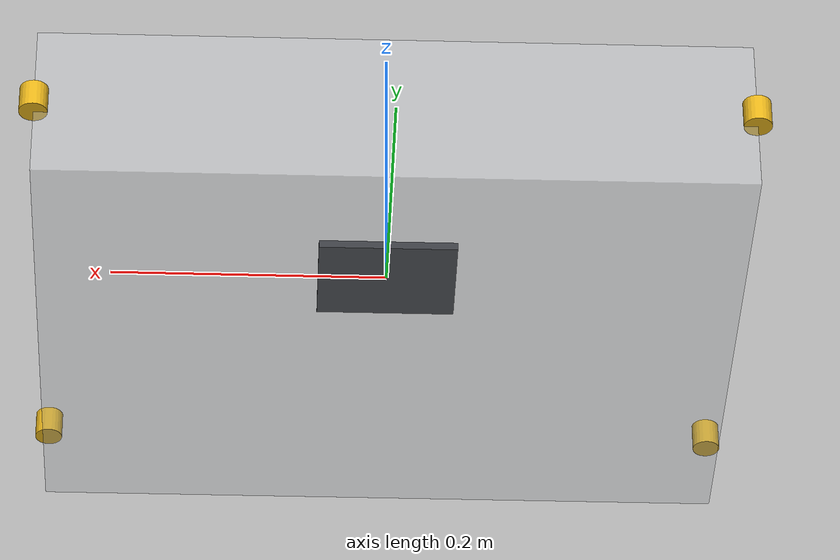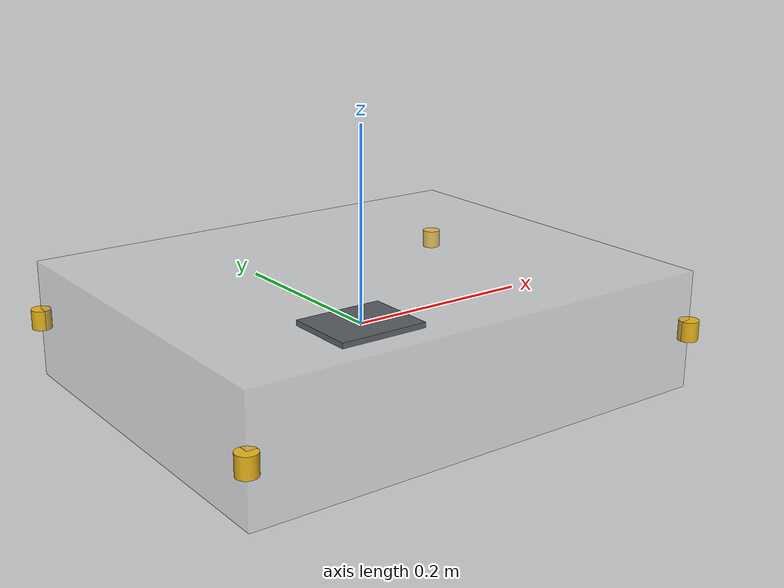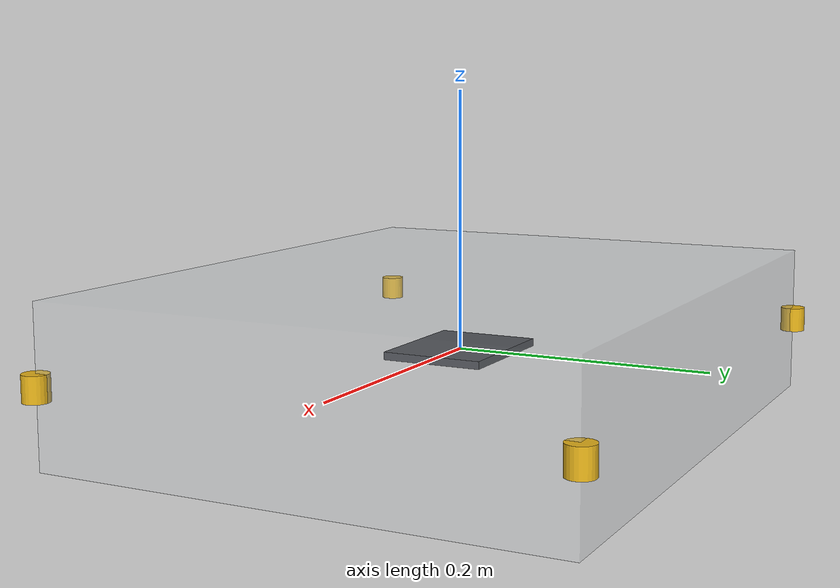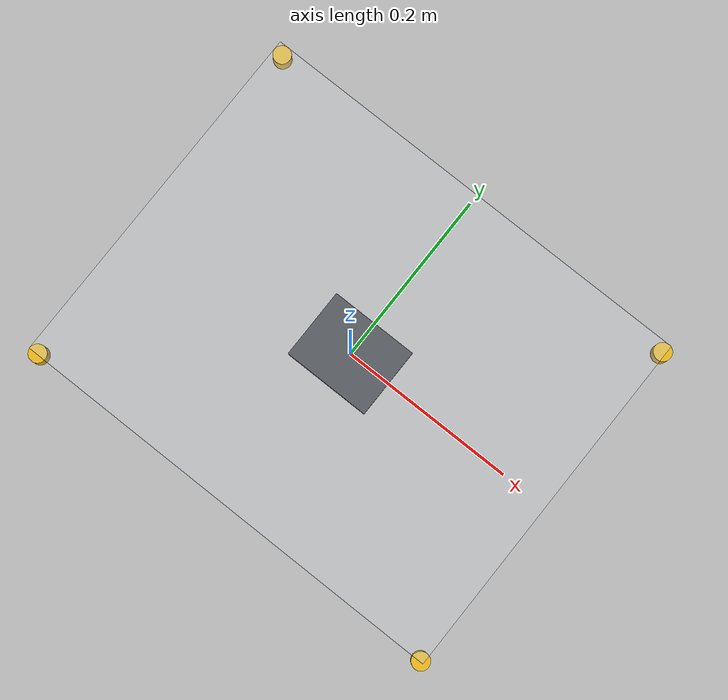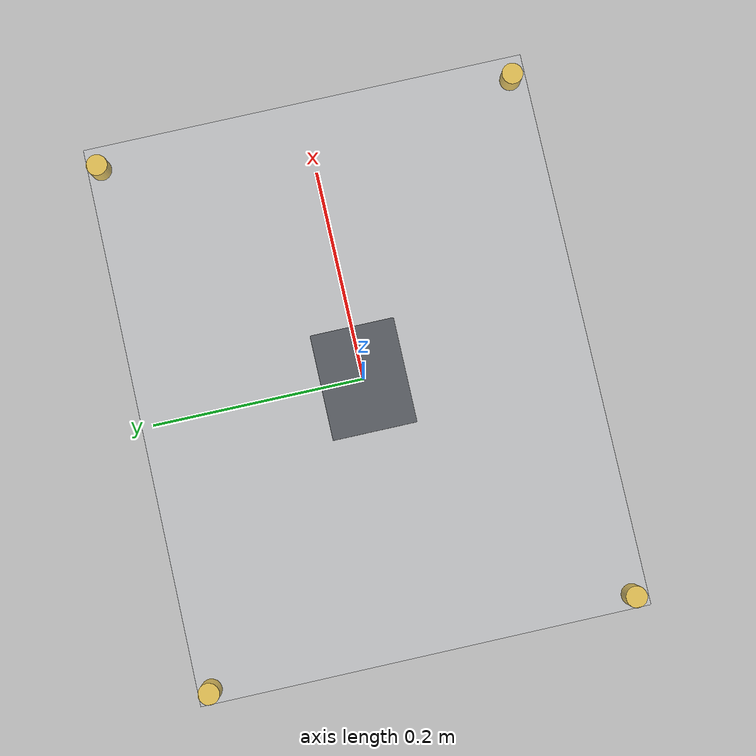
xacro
<?xml version="1.0"?>
<robot xmlns:xacro="http://www.ros.org/wiki/xacro" name="planar_cdpr">

  <!-- Canonical Geometry Parameters (500x400 mm frame, 100x80 mm platform) -->
  <xacro:property name="frame_width" value="0.500" />
  <xacro:property name="frame_height" value="0.400" />
  <xacro:property name="frame_depth" value="0.120" />
  <xacro:property name="extrusion_size" value="0.020" />

  <xacro:property name="platform_width" value="0.100" />
  <xacro:property name="platform_height" value="0.080" />
  <xacro:property name="platform_thickness" value="0.006" />
  <xacro:property name="platform_mass" value="0.50" />

  <!-- Base Link: World / Center of Frame Origin -->
  <link name="base_link" />

  <link name="cdpr_frame">
    <visual>
      <origin xyz="0 0 0" rpy="0 0 0" />
      <geometry>
        <!-- Outer frame wireframe representation -->
        <box size="${frame_width} ${frame_height} ${frame_depth}" />
      </geometry>
      <material name="silver_aluminum">
        <color rgba="0.8 0.82 0.85 0.3" />
      </material>
    </visual>
  </link>

  <joint name="world_to_frame" type="fixed">
    <parent link="base_link" />
    <child link="cdpr_frame" />
    <origin xyz="0 0 0" rpy="0 0 0" />
  </joint>

  <!-- Frame Corner Pulley Anchors -->
  <!-- C1: Top-Left (-0.25, +0.20) -->
  <link name="anchor_c1">
    <visual>
      <geometry><cylinder radius="0.010" length="0.020" /></geometry>
      <material name="gold"><color rgba="0.9 0.7 0.1 1.0" /></material>
    </visual>
  </link>
  <joint name="frame_to_c1" type="fixed">
    <parent link="cdpr_frame" />
    <child link="anchor_c1" />
    <origin xyz="-0.250 0.200 0.0" rpy="0 0 0" />
  </joint>

  <!-- C2: Top-Right (+0.25, +0.20) -->
  <link name="anchor_c2">
    <visual>
      <geometry><cylinder radius="0.010" length="0.020" /></geometry>
      <material name="gold"><color rgba="0.9 0.7 0.1 1.0" /></material>
    </visual>
  </link>
  <joint name="frame_to_c2" type="fixed">
    <parent link="cdpr_frame" />
    <child link="anchor_c2" />
    <origin xyz="0.250 0.200 0.0" rpy="0 0 0" />
  </joint>

  <!-- C3: Bottom-Right (+0.25, -0.20) -->
  <link name="anchor_c3">
    <visual>
      <geometry><cylinder radius="0.010" length="0.020" /></geometry>
      <material name="gold"><color rgba="0.9 0.7 0.1 1.0" /></material>
    </visual>
  </link>
  <joint name="frame_to_c3" type="fixed">
    <parent link="cdpr_frame" />
    <child link="anchor_c3" />
    <origin xyz="0.250 -0.200 0.0" rpy="0 0 0" />
  </joint>

  <!-- C4: Bottom-Left (-0.25, -0.20) -->
  <link name="anchor_c4">
    <visual>
      <geometry><cylinder radius="0.010" length="0.020" /></geometry>
      <material name="gold"><color rgba="0.9 0.7 0.1 1.0" /></material>
    </visual>
  </link>
  <joint name="frame_to_c4" type="fixed">
    <parent link="cdpr_frame" />
    <child link="anchor_c4" />
    <origin xyz="-0.250 -0.200 0.0" rpy="0 0 0" />
  </joint>

  <!-- Virtual Planar Prismatic Joints for Platform X/Y Kinematic Simulation -->
  <link name="platform_x_slider" />
  <joint name="joint_platform_x" type="prismatic">
    <parent link="cdpr_frame" />
    <child link="platform_x_slider" />
    <axis xyz="1 0 0" />
    <limit lower="-0.180" upper="0.180" effort="50.0" velocity="0.100" />
  </joint>

  <!-- Moving End-Effector Platform -->
  <link name="platform_link">
    <inertial>
      <mass value="${platform_mass}" />
      <origin xyz="0 0 0" rpy="0 0 0" />
      <inertia ixx="0.00027" ixy="0" ixz="0" iyy="0.00042" iyz="0" izz="0.00068" />
    </inertial>
    <visual>
      <origin xyz="0 0 0" rpy="0 0 0" />
      <geometry>
        <box size="${platform_width} ${platform_height} ${platform_thickness}" />
      </geometry>
      <material name="dark_grey">
        <color rgba="0.15 0.16 0.18 1.0" />
      </material>
    </visual>
    <collision>
      <geometry>
        <box size="${platform_width} ${platform_height} ${platform_thickness}" />
      </geometry>
    </collision>
  </link>

  <joint name="joint_platform_y" type="prismatic">
    <parent link="platform_x_slider" />
    <child link="platform_link" />
    <axis xyz="0 1 0" />
    <limit lower="-0.140" upper="0.140" effort="50.0" velocity="0.100" />
  </joint>

</robot>
